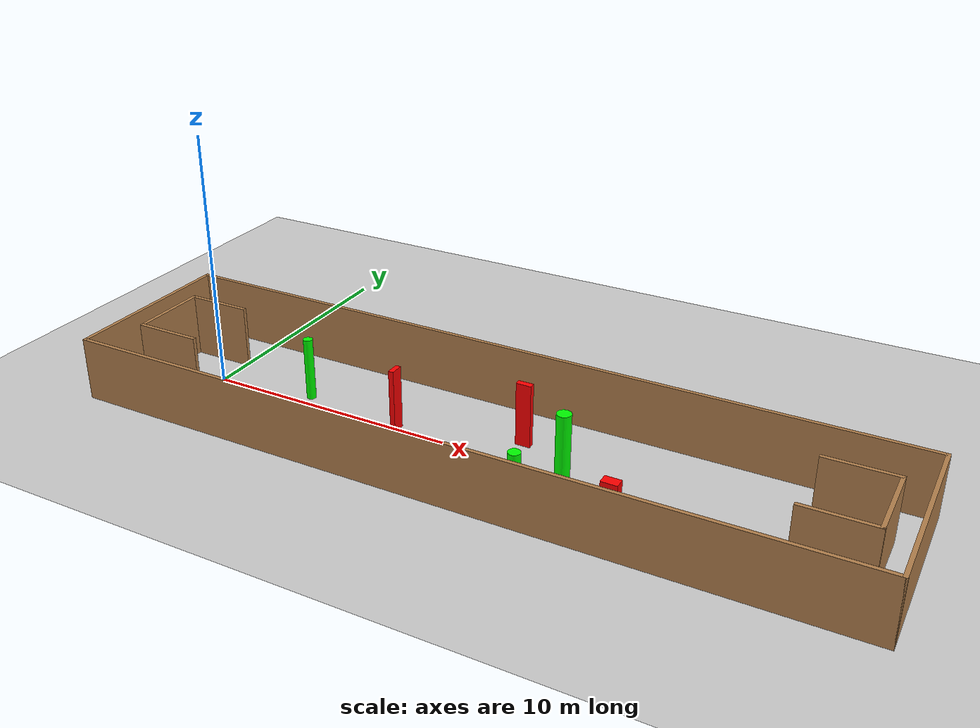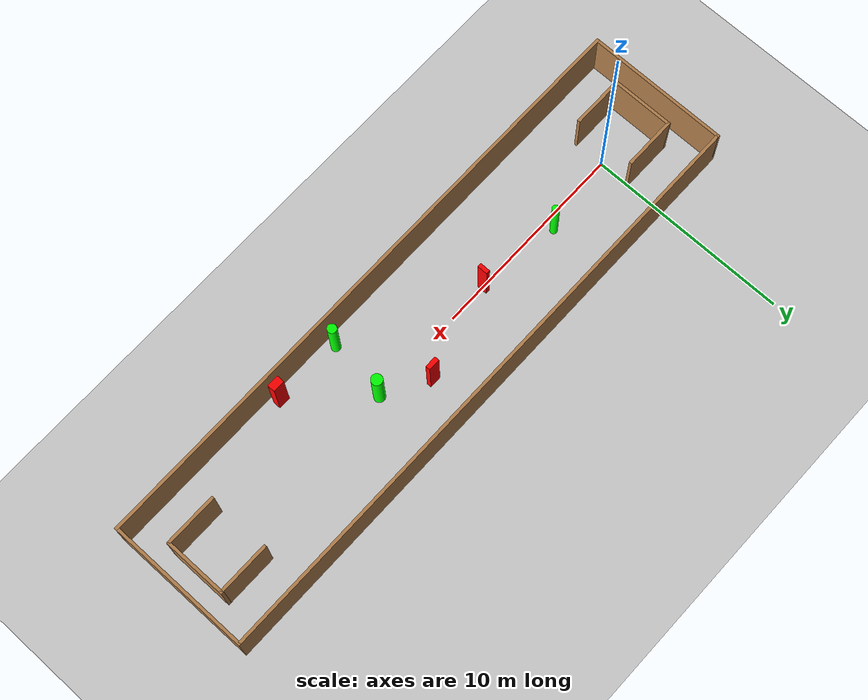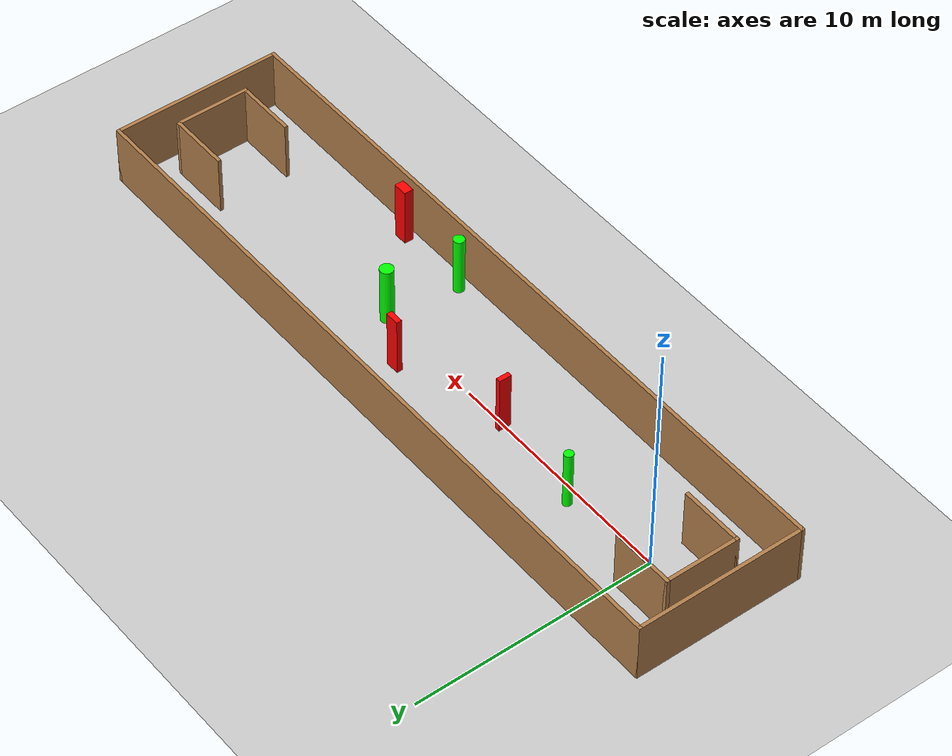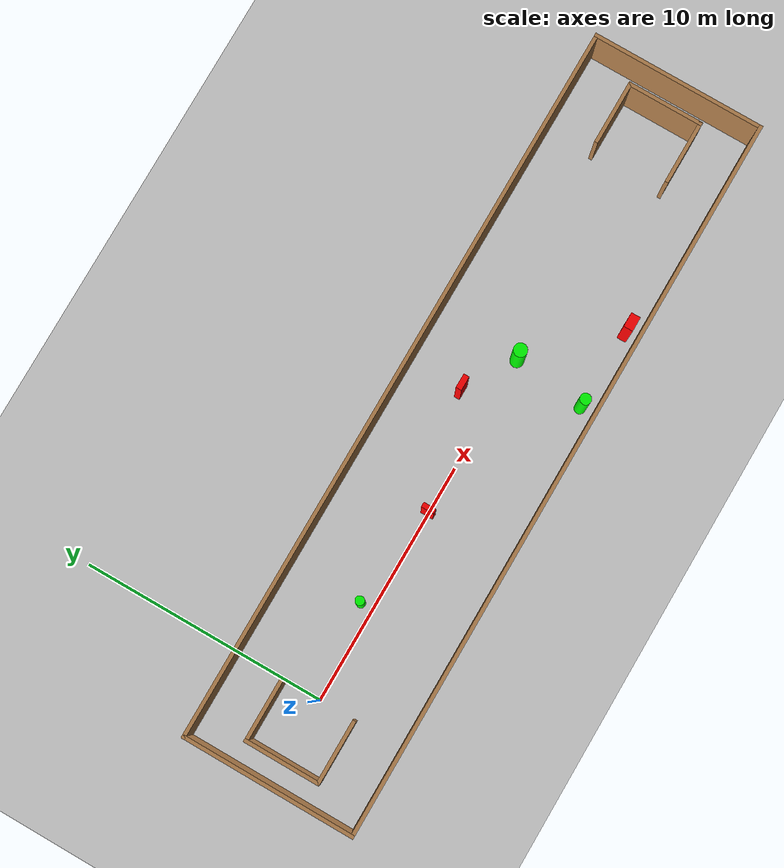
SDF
<sdf version="1.7">
 <world name="default">
  <light name="sun" type="directional">
   <pose>0 0 10 0 -0 0</pose>
   <diffuse>0.8 0.8 0.8 1</diffuse>
   <specular>0.2 0.2 0.2 1</specular>
   <attenuation>
    <range>1000</range>
    <constant>0.9</constant>
    <linear>0.01</linear>
    <quadratic>0.001</quadratic>
   </attenuation>
   <direction>-0.5 0.1 -0.9</direction>
   <spot><inner_angle>0</inner_angle><outer_angle>0</outer_angle><falloff>0</falloff></spot>
  </light>
  <model name="ground_plane">
   <static>1</static>
   <link name="link">
    <collision name="collision">
     <geometry><plane><normal>0 0 1</normal><size>100 100</size></plane></geometry>
     <surface>
      <contact><collide_bitmask>65535</collide_bitmask></contact>
      <friction><ode><mu>100</mu><mu2>50</mu2></ode></friction>
     </surface>
    </collision>
    <visual name="visual">
     <cast_shadows>0</cast_shadows>
     <geometry><plane><normal>0 0 1</normal><size>100 100</size></plane></geometry>
     <material>
      <script><uri>file://media/materials/scripts/gazebo.material</uri><name>Gazebo/Grey</name></script>
     </material>
    </visual>
   </link>
  </model>
  <gravity>0 0 -9.8</gravity>
  <magnetic_field>6e-06 2.3e-05 -4.2e-05</magnetic_field>
  <atmosphere type="adiabatic"/>
  <physics type="ode">
   <max_step_size>0.001</max_step_size>
   <real_time_factor>1</real_time_factor>
   <real_time_update_rate>1000</real_time_update_rate>
  </physics>
  <scene><ambient>0.4 0.4 0.4 1</ambient><background>0.7 0.7 0.7 1</background><shadows>1</shadows></scene>
  <spherical_coordinates>
   <surface_model>EARTH_WGS84</surface_model>
   <latitude_deg>0</latitude_deg>
   <longitude_deg>0</longitude_deg>
   <elevation>0</elevation>
   <heading_deg>0</heading_deg>
  </spherical_coordinates>
  <model name="my_base_walls">
   <link name="Wall_0">
    <collision name="Wall_0_Collision">
     <geometry><box><size>7.15 0.15 2.5</size></box></geometry>
     <pose>0 0 1.25 0 -0 0</pose>
    </collision>
    <visual name="Wall_0_Visual">
     <pose>0 0 1.25 0 -0 0</pose>
     <geometry><box><size>7.15 0.15 2.5</size></box></geometry>
     <material>
      <script><uri>file://media/materials/scripts/gazebo.material</uri><name>Gazebo/Wood</name></script>
      <ambient>1 1 1 1</ambient>
     </material>
     <meta><layer>0</layer></meta>
    </visual>
    <pose>-15 0 0 0 -0 1.5708</pose>
   </link>
   <link name="Wall_10">
    <collision name="Wall_10_Collision">
     <geometry><box><size>2.65 0.15 2.5</size></box></geometry>
     <pose>0 0 1.25 0 -0 0</pose>
    </collision>
    <visual name="Wall_10_Visual">
     <pose>0 0 1.25 0 -0 0</pose>
     <geometry><box><size>2.65 0.15 2.5</size></box></geometry>
     <material>
      <script><uri>file://media/materials/scripts/gazebo.material</uri><name>Gazebo/Wood</name></script>
      <ambient>1 1 1 1</ambient>
     </material>
     <meta><layer>0</layer></meta>
    </visual>
    <pose>-12.75 -1.5 0 0 -0 0</pose>
   </link>
   <link name="Wall_12">
    <collision name="Wall_12_Collision">
     <geometry><box><size>2.65 0.15 2.5</size></box></geometry>
     <pose>0 0 1.25 0 -0 0</pose>
    </collision>
    <visual name="Wall_12_Visual">
     <pose>0 0 1.25 0 -0 0</pose>
     <geometry><box><size>2.65 0.15 2.5</size></box></geometry>
     <material>
      <script><uri>file://media/materials/scripts/gazebo.material</uri><name>Gazebo/Wood</name></script>
      <ambient>1 1 1 1</ambient>
     </material>
     <meta><layer>0</layer></meta>
    </visual>
    <pose>-12.75 1.5 0 0 -0 0</pose>
   </link>
   <link name="Wall_14">
    <collision name="Wall_14_Collision">
     <geometry><box><size>3.15 0.15 2.5</size></box></geometry>
     <pose>0 0 1.25 0 -0 0</pose>
    </collision>
    <visual name="Wall_14_Visual">
     <pose>0 0 1.25 0 -0 0</pose>
     <geometry><box><size>3.15 0.15 2.5</size></box></geometry>
     <material>
      <script><uri>file://media/materials/scripts/gazebo.material</uri><name>Gazebo/Wood</name></script>
      <ambient>1 1 1 1</ambient>
     </material>
     <meta><layer>0</layer></meta>
    </visual>
    <pose>14 0 0 0 -0 -1.5708</pose>
   </link>
   <link name="Wall_15">
    <collision name="Wall_15_Collision">
     <geometry><box><size>2.65 0.15 2.5</size></box></geometry>
     <pose>0 0 1.25 0 -0 0</pose>
    </collision>
    <visual name="Wall_15_Visual">
     <pose>0 0 1.25 0 -0 0</pose>
     <geometry><box><size>2.65 0.15 2.5</size></box></geometry>
     <material>
      <script><uri>file://media/materials/scripts/gazebo.material</uri><name>Gazebo/Wood</name></script>
      <ambient>1 1 1 1</ambient>
     </material>
     <meta><layer>0</layer></meta>
    </visual>
    <pose>12.75 -1.5 0 0 -0 3.14159</pose>
   </link>
   <link name="Wall_17">
    <collision name="Wall_17_Collision">
     <geometry><box><size>2.65 0.15 2.5</size></box></geometry>
     <pose>0 0 1.25 0 -0 0</pose>
    </collision>
    <visual name="Wall_17_Visual">
     <pose>0 0 1.25 0 -0 0</pose>
     <geometry><box><size>2.65 0.15 2.5</size></box></geometry>
     <material>
      <script><uri>file://media/materials/scripts/gazebo.material</uri><name>Gazebo/Wood</name></script>
      <ambient>1 1 1 1</ambient>
     </material>
     <meta><layer>0</layer></meta>
    </visual>
    <pose>12.75 1.5 0 0 -0 3.14159</pose>
   </link>
   <link name="Wall_2">
    <collision name="Wall_2_Collision">
     <geometry><box><size>30.15 0.15 2.5</size></box></geometry>
     <pose>0 0 1.25 0 -0 0</pose>
    </collision>
    <visual name="Wall_2_Visual">
     <pose>0 0 1.25 0 -0 0</pose>
     <geometry><box><size>30.15 0.15 2.5</size></box></geometry>
     <material>
      <script><uri>file://media/materials/scripts/gazebo.material</uri><name>Gazebo/Wood</name></script>
      <ambient>1 1 1 1</ambient>
     </material>
     <meta><layer>0</layer></meta>
    </visual>
    <pose>-0 -3.5 0 0 -0 0</pose>
   </link>
   <link name="Wall_4">
    <collision name="Wall_4_Collision">
     <geometry><box><size>30.15 0.15 2.5</size></box></geometry>
     <pose>0 0 1.25 0 -0 0</pose>
    </collision>
    <visual name="Wall_4_Visual">
     <pose>0 0 1.25 0 -0 0</pose>
     <geometry><box><size>30.15 0.15 2.5</size></box></geometry>
     <material>
      <script><uri>file://media/materials/scripts/gazebo.material</uri><name>Gazebo/Wood</name></script>
      <ambient>1 1 1 1</ambient>
     </material>
     <meta><layer>0</layer></meta>
    </visual>
    <pose>-0 3.5 0 0 -0 0</pose>
   </link>
   <link name="Wall_6">
    <collision name="Wall_6_Collision">
     <geometry><box><size>7.15 0.15 2.5</size></box></geometry>
     <pose>0 0 1.25 0 -0 0</pose>
    </collision>
    <visual name="Wall_6_Visual">
     <pose>0 0 1.25 0 -0 0</pose>
     <geometry><box><size>7.15 0.15 2.5</size></box></geometry>
     <material>
      <script><uri>file://media/materials/scripts/gazebo.material</uri><name>Gazebo/Wood</name></script>
      <ambient>1 1 1 1</ambient>
     </material>
     <meta><layer>0</layer></meta>
    </visual>
    <pose>15 0 0 0 -0 -1.5708</pose>
   </link>
   <link name="Wall_9">
    <collision name="Wall_9_Collision">
     <geometry><box><size>3.15 0.15 2.5</size></box></geometry>
     <pose>0 0 1.25 0 -0 0</pose>
    </collision>
    <visual name="Wall_9_Visual">
     <pose>0 0 1.25 0 -0 0</pose>
     <geometry><box><size>3.15 0.15 2.5</size></box></geometry>
     <material>
      <script><uri>file://media/materials/scripts/gazebo.material</uri><name>Gazebo/Wood</name></script>
      <ambient>1 1 1 1</ambient>
     </material>
     <meta><layer>0</layer></meta>
    </visual>
    <pose>-14 0 0 0 -0 -1.5708</pose>
   </link>
   <static>1</static>
   <pose>11.5 0 0 0 -0 0</pose>
  </model>
  <model name="cylinder1">
   <static>1</static>
   <link name="link">
    <inertial>
     <mass>1</mass>
     <inertia><ixx>0.5</ixx><ixy>0</ixy><ixz>0</ixz><iyy>0.5</iyy><iyz>0</iyz><izz>1</izz></inertia>
    </inertial>
    <collision name="collision">
     <geometry><cylinder><radius>0.22574443273588018</radius><length>2.5</length></cylinder></geometry>
    </collision>
    <visual name="visual">
     <geometry><cylinder><radius>0.22574443273588018</radius><length>2.5</length></cylinder></geometry>
     <material>
      <ambient>0 1 0 1</ambient>
      <diffuse>0 1 0 1</diffuse>
      <specular>0.1 0.1 0.1 1</specular>
      <emissive>0 0 0 0</emissive>
     </material>
    </visual>
   </link>
   <pose>14.364919259305784 -2.916336210597591 1.25 0 0 0</pose>
  </model>
  <model name="cylinder2">
   <static>1</static>
   <link name="link">
    <inertial>
     <mass>1</mass>
     <inertia><ixx>0.5</ixx><ixy>0</ixy><ixz>0</ixz><iyy>0.5</iyy><iyz>0</iyz><izz>1</izz></inertia>
    </inertial>
    <collision name="collision">
     <geometry><cylinder><radius>0.27406650157805024</radius><length>2.5</length></cylinder></geometry>
    </collision>
    <visual name="visual">
     <geometry><cylinder><radius>0.27406650157805024</radius><length>2.5</length></cylinder></geometry>
     <material>
      <ambient>0 1 0 1</ambient>
      <diffuse>0 1 0 1</diffuse>
      <specular>0.1 0.1 0.1 1</specular>
      <emissive>0 0 0 0</emissive>
     </material>
    </visual>
   </link>
   <pose>14.739614633817734 0.039188362180871295 1.25 0 0 0</pose>
  </model>
  <model name="cylinder3">
   <static>1</static>
   <link name="link">
    <inertial>
     <mass>1</mass>
     <inertia><ixx>0.5</ixx><ixy>0</ixy><ixz>0</ixz><iyy>0.5</iyy><iyz>0</iyz><izz>1</izz></inertia>
    </inertial>
    <collision name="collision">
     <geometry><cylinder><radius>0.1820037178661763</radius><length>2.5</length></cylinder></geometry>
    </collision>
    <visual name="visual">
     <geometry><cylinder><radius>0.1820037178661763</radius><length>2.5</length></cylinder></geometry>
     <material>
      <ambient>0 1 0 1</ambient>
      <diffuse>0 1 0 1</diffuse>
      <specular>0.1 0.1 0.1 1</specular>
      <emissive>0 0 0 0</emissive>
     </material>
    </visual>
   </link>
   <pose>3.8725140910334925 0.5056982378149382 1.25 0 0 0</pose>
  </model>
  <model name="box1">
   <static>1</static>
   <link name="link">
    <inertial>
     <mass>1</mass>
     <inertia><ixx>0.083</ixx><ixy>0</ixy><ixz>0</ixz><iyy>0.083</iyy><iyz>0</iyz><izz>0.083</izz></inertia>
    </inertial>
    <collision name="collision">
     <geometry><box><size>0.2012222075245374 0.5201903789670274 2.5</size></box></geometry>
    </collision>
    <visual name="visual">
     <geometry><box><size>0.2012222075245374 0.5201903789670274 2.5</size></box></geometry>
     <material>
      <ambient>1 0 0 1</ambient>
      <diffuse>1 0 0 1</diffuse>
      <specular>0.1 0.1 0.1 1</specular>
      <emissive>0 0 0 0</emissive>
     </material>
    </visual>
    <sensor name="my_contact" type="contact">
     <contact><collision>box_collision</collision><topic>__default_topic__</topic></contact>
    </sensor>
   </link>
   <pose>8.02916906220931 0.035647893441371536 1.25 0 0 0</pose>
  </model>
  <model name="box2">
   <static>1</static>
   <link name="link">
    <inertial>
     <mass>1</mass>
     <inertia><ixx>0.083</ixx><ixy>0</ixy><ixz>0</ixz><iyy>0.083</iyy><iyz>0</iyz><izz>0.083</izz></inertia>
    </inertial>
    <collision name="collision">
     <geometry><box><size>0.5897816308096812 0.38155599417148567 2.5</size></box></geometry>
    </collision>
    <visual name="visual">
     <geometry><box><size>0.5897816308096812 0.38155599417148567 2.5</size></box></geometry>
     <material>
      <ambient>1 0 0 1</ambient>
      <diffuse>1 0 0 1</diffuse>
      <specular>0.1 0.1 0.1 1</specular>
      <emissive>0 0 0 0</emissive>
     </material>
    </visual>
    <sensor name="my_contact" type="contact">
     <contact><collision>box_collision</collision><topic>__default_topic__</topic></contact>
    </sensor>
   </link>
   <pose>17.709866620683247 -2.9809159675142975 1.25 0 0 0</pose>
  </model>
  <model name="box3">
   <static>1</static>
   <link name="link">
    <inertial>
     <mass>1</mass>
     <inertia><ixx>0.083</ixx><ixy>0</ixy><ixz>0</ixz><iyy>0.083</iyy><iyz>0</iyz><izz>0.083</izz></inertia>
    </inertial>
    <collision name="collision">
     <geometry><box><size>0.5810774086112673 0.2323914424626167 2.5</size></box></geometry>
    </collision>
    <visual name="visual">
     <geometry><box><size>0.5810774086112673 0.2323914424626167 2.5</size></box></geometry>
     <material>
      <ambient>1 0 0 1</ambient>
      <diffuse>1 0 0 1</diffuse>
      <specular>0.1 0.1 0.1 1</specular>
      <emissive>0 0 0 0</emissive>
     </material>
    </visual>
    <sensor name="my_contact" type="contact">
     <contact><collision>box_collision</collision><topic>__default_topic__</topic></contact>
    </sensor>
   </link>
   <pose>12.64594455737287 1.2841914832090158 1.25 0 0 0</pose>
  </model>
 </world>
</sdf>
